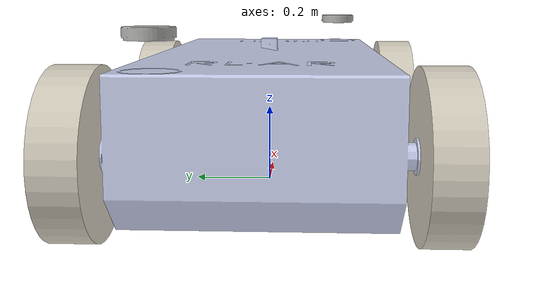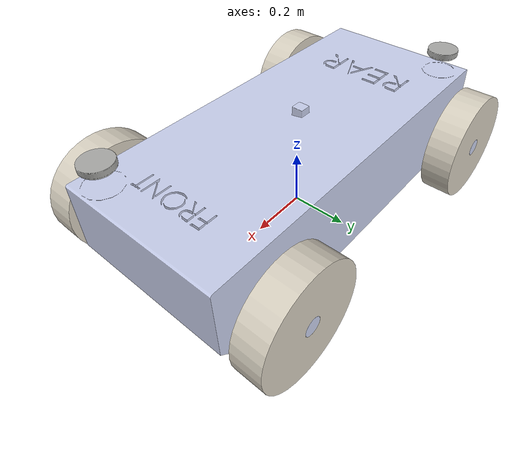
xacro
<?xml version="1.0" encoding="utf-8"?>

<robot
  name="mathew" xmlns:xacro="http://www.ros.org/wiki/xacro">
  <link
    name="base_footprint">
  </link>
  <joint
    name="base_footprint_joint"
    type="fixed">
    <origin
      xyz="0 0 0.189"
      rpy="0 0 0" />
    <parent
      link="base_footprint" />
    <child
      link="Robot_base_link" />
    <axis
      xyz="0 0 0" />
  </joint>

  <link
    name="Robot_base_link">
    <inertial>
      <origin
        xyz="5.09591293669232E-05 1.03836497844512E-07 0.00199051081559098"
        rpy="0 0 0" />
      <mass
        value="241.063768542417" />
      <inertia
        ixx="8.86559277712223"
        ixy="-0.000139376257944501"
        ixz="-0.00190501007604874"
        iyy="35.4285858259505"
        iyz="-6.19174664034162E-06"
        izz="40.1634860997762" />
    </inertial>
    <visual>
      <origin
        xyz="0 0 0"
        rpy="0 0 0" />
      <geometry>
        <mesh
          filename="package://mathew/meshes/Robot_base_link.STL" />
      </geometry>
      <material
        name="">
        <color
          rgba="0.792156862745098 0.819607843137255 0.933333333333333 1" />
      </material>
    </visual>
    <collision>
      <origin
        xyz="0 0 0"
        rpy="0 0 0" />
      <geometry>
        <mesh
          filename="package://mathew/meshes/Robot_base_link.STL" />
      </geometry>
    </collision>
  </link>

  <link
    name="OD_Front_Right_Link">
    <inertial>
      <origin
        xyz="0 -0.051 -1.11022302462516E-16"
        rpy="0 0 0" />
      <mass
        value="11.3918721666919" />
      <inertia
        ixx="0.116249630857941"
        ixy="2.87991202066482E-21"
        ixz="-4.0153067468998E-19"
        iyy="0.212745755378839"
        iyz="-4.60785923306369E-20"
        izz="0.116249630857941" />
    </inertial>
    <visual>
      <origin
        xyz="0 0 0"
        rpy="0 0 0" />
      <geometry>
        <mesh
          filename="package://mathew/meshes/OD_Front_Right_Link.STL" />
      </geometry>
      <material
        name="">
        <color
          rgba="0.843137254901961 0.815686274509804 0.752941176470588 1" />
      </material>
    </visual>
    <collision>
      <origin
        xyz="0 0 0"
        rpy="0 0 0" />
      <geometry>
        <mesh
          filename="package://mathew/meshes/OD_Front_Right_Link.STL" />
      </geometry>
    </collision>
  </link>
  <joint
    name="Joint_FR"
    type="continuous">
    <origin
      xyz="0.471639244942989 -0.333 -0.0255025257158976"
      rpy="0 0 0" />
    <parent
      link="Robot_base_link" />
    <child
      link="OD_Front_Right_Link" />
    <axis
      xyz="0 1 0" />
  </joint>

  <link
    name="OD_Front_Left_Link">
    <inertial>
      <origin
        xyz="6.93889390390723E-18 0.0509999999999999 0"
        rpy="0 0 0" />
      <mass
        value="11.3918721666919" />
      <inertia
        ixx="0.116249630857942"
        ixy="-2.64396478353699E-34"
        ixz="-4.01530674689982E-19"
        iyy="0.212745755378839"
        iyz="9.21571846612621E-20"
        izz="0.116249630857942" />
    </inertial>
    <visual>
      <origin
        xyz="0 0 0"
        rpy="0 0 0" />
      <geometry>
        <mesh
          filename="package://mathew/meshes/OD_Front_Left_Link.STL" />
      </geometry>
      <material
        name="">
        <color
          rgba="0.843137254901961 0.815686274509804 0.752941176470588 1" />
      </material>
    </visual>
    <collision>
      <origin
        xyz="0 0 0"
        rpy="0 0 0" />
      <geometry>
        <mesh
          filename="package://mathew/meshes/OD_Front_Left_Link.STL" />
      </geometry>
    </collision>
  </link>
  <joint
    name="Joint_FL"
    type="continuous">
    <origin
      xyz="0.471639244942989 0.333 -0.0255025257158976"
      rpy="0 0 0" />
    <parent
      link="Robot_base_link" />
    <child
      link="OD_Front_Left_Link" />
    <axis
      xyz="0 1 0" />
  </joint>

  <link
    name="OD_Rear_Right_Link">
    <inertial>
      <origin
        xyz="2.22044604925031E-16 -0.051 -1.11022302462516E-16"
        rpy="0 0 0" />
      <mass
        value="11.3918721666919" />
      <inertia
        ixx="0.116249630857941"
        ixy="-2.64289174497246E-20"
        ixz="0"
        iyy="0.212745755378839"
        iyz="-2.90867661436363E-18"
        izz="0.116249630857941" />
    </inertial>
    <visual>
      <origin
        xyz="0 0 0"
        rpy="0 0 0" />
      <geometry>
        <mesh
          filename="package://mathew/meshes/OD_Rear_Right_Link.STL" />
      </geometry>
      <material
        name="">
        <color
          rgba="0.843137254901961 0.815686274509804 0.752941176470588 1" />
      </material>
    </visual>
    <collision>
      <origin
        xyz="0 0 0"
        rpy="0 0 0" />
      <geometry>
        <mesh
          filename="package://mathew/meshes/OD_Rear_Right_Link.STL" />
      </geometry>
    </collision>
  </link>
  <joint
    name="Joint_RR"
    type="continuous">
    <origin
      xyz="-0.471639244942989 -0.333 -0.0255025257158976"
      rpy="0 0.0543209676279548 0" />
    <parent
      link="Robot_base_link" />
    <child
      link="OD_Rear_Right_Link" />
    <axis
      xyz="0 1 0" />
  </joint>

  <link
    name="OD_Rear_Left_Link">
    <inertial>
      <origin
        xyz="0 0.0509999999999999 0"
        rpy="0 0 0" />
      <mass
        value="11.3918721666919" />
      <inertia
        ixx="0.116249630857942"
        ixy="2.64289174497374E-20"
        ixz="-8.67361737988404E-19"
        iyy="0.212745755378839"
        iyz="2.90867661436364E-18"
        izz="0.116249630857942" />
    </inertial>
    <visual>
      <origin
        xyz="0 0 0"
        rpy="0 0 0" />
      <geometry>
        <mesh
          filename="package://mathew/meshes/OD_Rear_Left_Link.STL" />
      </geometry>
      <material
        name="">
        <color
          rgba="0.843137254901961 0.815686274509804 0.752941176470588 1" />
      </material>
    </visual>
    <collision>
      <origin
        xyz="0 0 0"
        rpy="0 0 0" />
      <geometry>
        <mesh
          filename="package://mathew/meshes/OD_Rear_Left_Link.STL" />
      </geometry>
    </collision>
  </link>
  <joint
    name="Joint_RL"
    type="continuous">
    <origin
      xyz="-0.471639244942989 0.333 -0.0255025257158976"
      rpy="0 0.0543209676279548 0" />
    <parent
      link="Robot_base_link" />
    <child
      link="OD_Rear_Left_Link" />
    <axis
      xyz="0 1 0" />
  </joint>

  <link
    name="Lidar_01_Link">
    <inertial>
      <origin
        xyz="0 -5.27355936696949E-16 0.0185457213017122"
        rpy="0 0 0" />
      <mass
        value="0.0354453335351902" />
      <inertia
        ixx="3.78262567255866E-05"
        ixy="-1.52465930505774E-20"
        ixz="-3.97578659645331E-22"
        iyy="3.78262567255866E-05"
        iyz="-4.18312799931867E-21"
        izz="7.11838127161572E-05" />
    </inertial>
    <visual>
      <origin
        xyz="0 0 0"
        rpy="0 0 0" />
      <geometry>
        <mesh
          filename="package://mathew/meshes/Lidar_01_Link.STL" />
      </geometry>
      <material
        name="">
        <color
          rgba="0.666666666666667 0.666666666666667 0.654901960784314 1" />
      </material>
    </visual>
    <collision>
      <origin
        xyz="0 0 0"
        rpy="0 0 0" />
      <geometry>
        <mesh
          filename="package://mathew/meshes/Lidar_01_Link.STL" />
      </geometry>
    </collision>
  </link>
  <joint
    name="Joint_Lidar_01"
    type="continuous">
    <origin
      xyz="0.584349244942989 -0.206770000000001 0.223197474284102"
      rpy="0 0 -1.94813685094794" />
    <parent
      link="Robot_base_link" />
    <child
      link="Lidar_01_Link" />
    <axis
      xyz="0 0 1" />
  </joint>
  <link
    name="Lidar_02_Link">
    <inertial>
      <origin
        xyz="7.7715611723761E-16 -4.44089209850063E-16 0.0185457213017121"
        rpy="0 0 0" />
      <mass
        value="0.0354453335351902" />
      <inertia
        ixx="3.78262567255866E-05"
        ixy="-4.40457132572236E-20"
        ixz="1.77605470036608E-20"
        iyy="3.78262567255866E-05"
        iyz="-5.92158401562722E-21"
        izz="7.11838127161571E-05" />
    </inertial>
    <visual>
      <origin
        xyz="0 0 0"
        rpy="0 0 0" />
      <geometry>
        <mesh
          filename="package://mathew/meshes/Lidar_02_Link.STL" />
      </geometry>
      <material
        name="">
        <color
          rgba="0.666666666666667 0.666666666666667 0.654901960784314 1" />
      </material>
    </visual>
    <collision>
      <origin
        xyz="0 0 0"
        rpy="0 0 0" />
      <geometry>
        <mesh
          filename="package://mathew/meshes/Lidar_02_Link.STL" />
      </geometry>
    </collision>
  </link>
  <joint
    name="Joint_Lidar02"
    type="continuous">
    <origin
      xyz="-0.582009244942989 0.20677 0.223197474284102"
      rpy="0 0 0.490826785061071" />
    <parent
      link="Robot_base_link" />
    <child
      link="Lidar_02_Link" />
    <axis
      xyz="0 0 1" />
  </joint>
  <link
    name="IMU_Link">
    <inertial>
      <origin
        xyz="0.000291766672996907 0.024487106735259 0.000258129230045645"
        rpy="0 0 0" />
      <mass
        value="0.0174359068070746" />
      <inertia
        ixx="5.2748517740017E-06"
        ixy="2.52839048078136E-09"
        ixz="-4.30155757447992E-08"
        iyy="7.47358565355333E-06"
        iyz="3.64112173942691E-07"
        izz="4.96152225058903E-06" />
    </inertial>
    <visual>
      <origin
        xyz="0 0 0"
        rpy="0 0 0" />
      <geometry>
        <mesh
          filename="package://mathew/meshes/IMU_Link.STL" />
      </geometry>
      <material
        name="">
        <color
          rgba="0.792156862745098 0.819607843137255 0.933333333333333 1" />
      </material>
    </visual>
    <collision>
      <origin
        xyz="0 0 0"
        rpy="0 0 0" />
      <geometry>
        <mesh
          filename="package://mathew/meshes/IMU_Link.STL" />
      </geometry>
    </collision>
  </link>
  <joint
    name="IMU_Joint"
    type="fixed">
    <origin
      xyz="-0.01829 -0.000125000000000153 0.162297474284102"
      rpy="1.5707963267949 0 0" />
    <parent
      link="Robot_base_link" />
    <child
      link="IMU_Link" />
    <axis
      xyz="0 0 0" />
  </joint>

    <gazebo>
      <plugin name="skid_steer_drive_controller" filename="libgazebo_ros_skid_steer_drive.so">
        <updateRate>100.0</updateRate>
        <robotNamespace>/mathew</robotNamespace>
        <leftFrontJoint>Joint_FL</leftFrontJoint>
        <rightFrontJoint>Joint_FR</rightFrontJoint>
        <leftRearJoint>Joint_RL</leftRearJoint>
        <rightRearJoint>Joint_RR</rightRearJoint>
        <wheelSeparation>0.768</wheelSeparation>
        <wheelDiameter>0.102</wheelDiameter>
        <robotBaseFrame>base_footprint</robotBaseFrame>
        <torque>7</torque>
        <commandTopic>/mathew/cmd_vel</commandTopic>
        <odometryTopic>/mathew/odom</odometryTopic>
        <broadcastTF>true</broadcastTF>

      </plugin>
    </gazebo>

    <gazebo>
    <plugin name="gazebo_ros_control" filename="libgazebo_ros_control.so">
      <robotNamespace>/swcr</robotNamespace>
      <robotSimType>gazebo_ros_control/DefaultRobotHWSim</robotSimType>
      <legacyModeNS>false</legacyModeNS>
    </plugin>
    </gazebo>

</robot>
